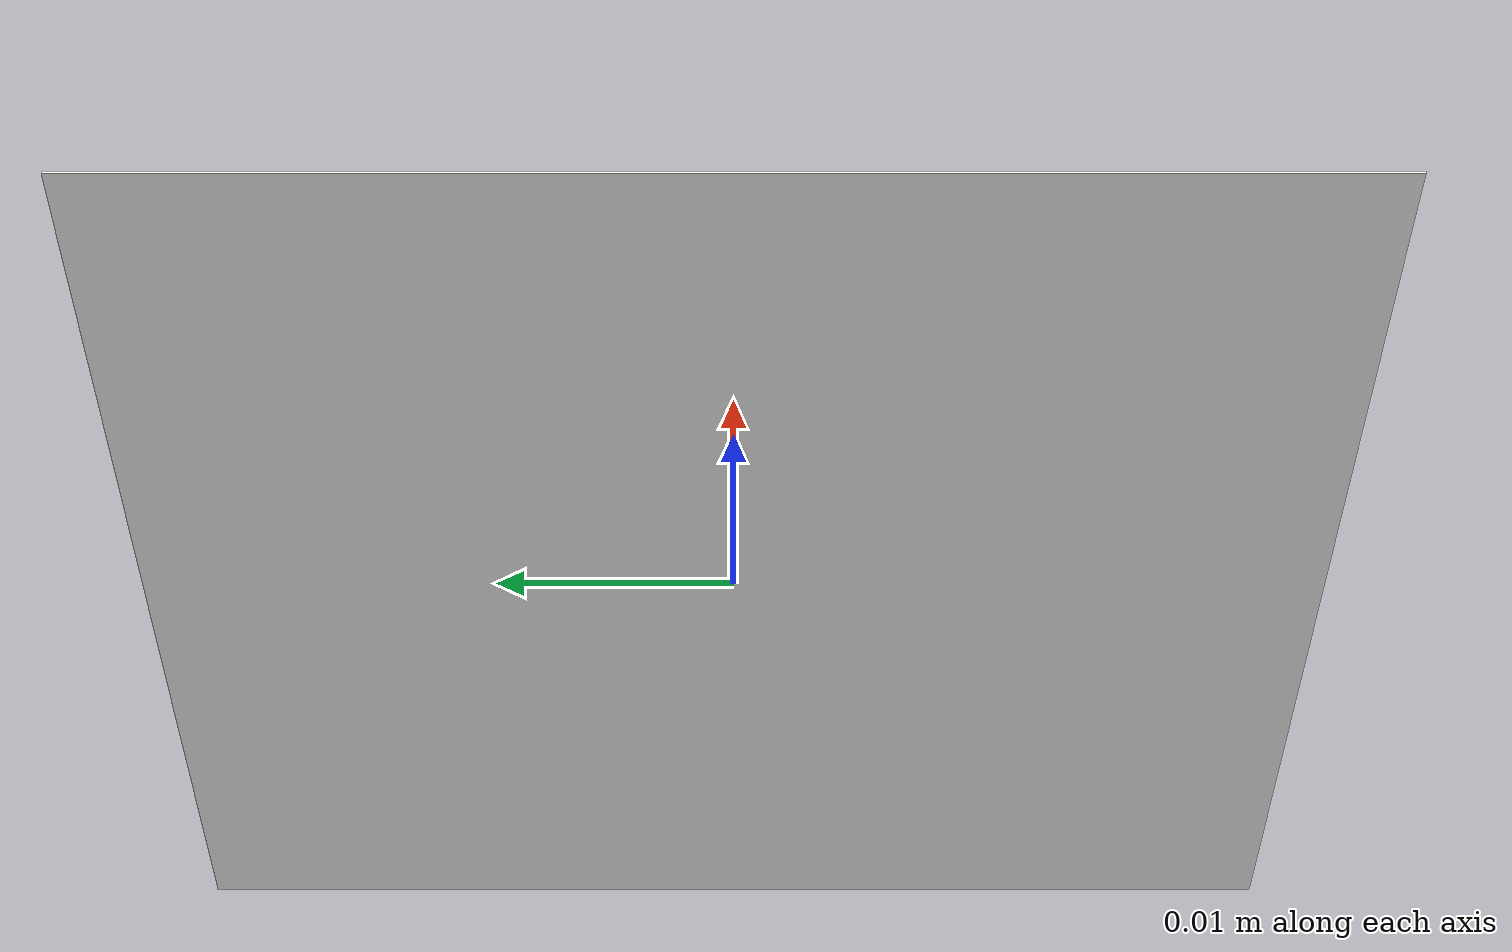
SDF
<?xml version="1.0"?>
<sdf version="1.6">
  <model name="aruco_marker">
    <static>false</static>
    <link name="link">
      <inertial>
        <pose>0 0 0 0 0 0</pose>
        <mass>0.001</mass>
        <inertia>
          <ixx>3.7499999999999997e-06</ixx>
          <ixy>0.0</ixy>
          <ixz>0.0</ixz>
          <iyy>1.8750008333333333e-06</iyy>
          <iyz>0.0</iyz>
          <izz>1.8750008333333333e-06</izz>
        </inertia>
      </inertial>
      <visual name="front_visual">
        <pose>0.00005 0 0 0 0 0</pose>
        <geometry>
          <box>
            <size>0.0001 0.05 0.05</size>
          </box>
        </geometry>
        <material>
          <ambient>1 1 1 1</ambient>
          <diffuse>1 1 1 1</diffuse>
          <specular>0.1 0.1 0.1 1</specular>
          <emissive>0 0 0 1</emissive>
          <pbr>
            <metal>
              <albedo_map>materials/textures/marker6x6_0.png</albedo_map>
              <metalness>0.0</metalness>
              <roughness>1.0</roughness>
            </metal>
          </pbr>
        </material>
      </visual>
      <!-- Hide the marker from the back -->
      <collision name="collision">
        <pose>0 0 0 0 0 0</pose>
        <geometry>
          <box>
            <size>0.0001 0.05 0.05</size>
          </box>
        </geometry>
      </collision>
    </link>
  </model>
</sdf>
